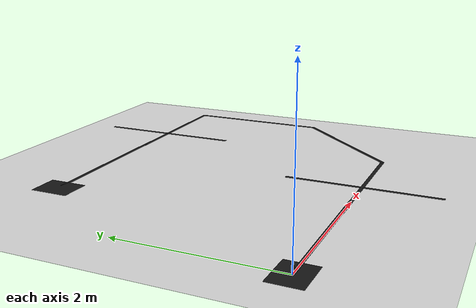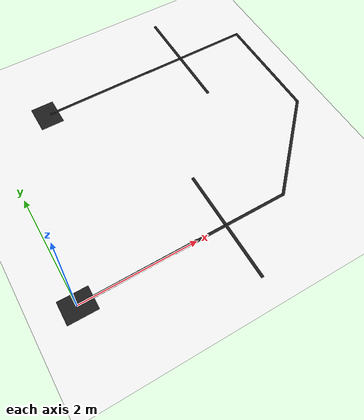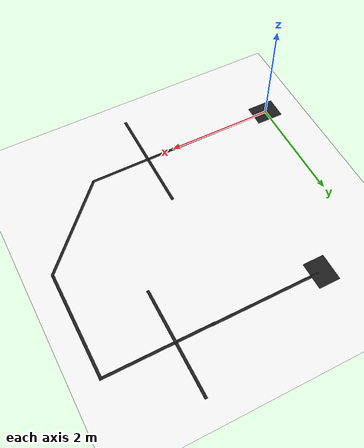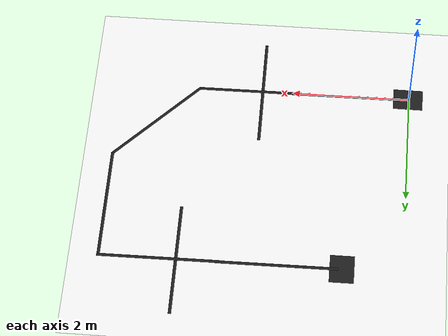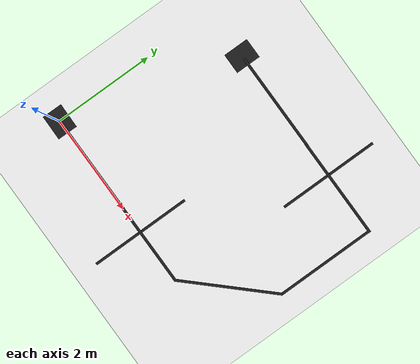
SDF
<sdf version="1.7">
 <world name="default">
  <light name="sun" type="directional">
   <pose>0 0 10 0 -0 0</pose>
   <diffuse>0.8 0.8 0.8 1</diffuse>
   <specular>0.2 0.2 0.2 1</specular>
   <attenuation>
    <range>1000</range>
    <constant>0.9</constant>
    <linear>0.01</linear>
    <quadratic>0.001</quadratic>
   </attenuation>
   <direction>-0.5 0.1 -0.9</direction>
   <spot><inner_angle>0</inner_angle><outer_angle>0</outer_angle><falloff>0</falloff></spot>
  </light>
  <model name="ground_plane">
   <static>1</static>
   <link name="link">
    <collision name="collision">
     <geometry><plane><normal>0 0 1</normal><size>100 100</size></plane></geometry>
     <surface>
      <contact><collide_bitmask>65535</collide_bitmask></contact>
      <friction><ode><mu>100</mu><mu2>50</mu2></ode></friction>
     </surface>
    </collision>
    <visual name="visual">
     <cast_shadows>0</cast_shadows>
     <geometry><plane><normal>0 0 1</normal><size>100 100</size></plane></geometry>
     <material><ambient>1 1 1 1</ambient><diffuse>1 1 1 1</diffuse><name>MyMaterials/White</name></material>
    </visual>
   </link>
  </model>
  <gravity>0 0 -9.8</gravity>
  <magnetic_field>6e-06 2.3e-05 -4.2e-05</magnetic_field>
  <atmosphere type="adiabatic"/>
  <physics type="ode">
   <max_step_size>0.001</max_step_size>
   <real_time_factor>1</real_time_factor>
   <real_time_update_rate>1000</real_time_update_rate>
  </physics>
  <scene><ambient>0.4 0.4 0.4 1</ambient><background>0.7 0.7 0.7 1</background><shadows>1</shadows></scene>
  <spherical_coordinates>
   <surface_model>EARTH_WGS84</surface_model>
   <latitude_deg>0</latitude_deg>
   <longitude_deg>0</longitude_deg>
   <elevation>0</elevation>
   <heading_deg>0</heading_deg>
  </spherical_coordinates>
  <model name="black_box">
   <static>1</static>
   <link name="link">
    <visual name="visual">
     <geometry><box><size>0.4 0.5 0.001</size></box></geometry>
     <material>
      <script><uri>file://media/materials/scripts/gazebo.material</uri><name>Gazebo/Black</name></script>
     </material>
    </visual>
   </link>
   <pose>0.014225 -0.002915 0 0 0 -1.58</pose>
  </model>
  <model name="black_line">
   <static>1</static>
   <link name="link">
    <visual name="visual">
     <geometry><box><size>0.05 2 0.001</size></box></geometry>
     <material>
      <script><uri>file://media/materials/scripts/gazebo.material</uri><name>Gazebo/Black</name></script>
     </material>
    </visual>
   </link>
   <pose>1.01052 0.006113 0 0 0 -1.56806</pose>
  </model>
  <model name="black_line_clone">
   <static>1</static>
   <link name="link">
    <visual name="visual">
     <geometry><box><size>0.05 2 0.001</size></box></geometry>
     <material>
      <script><uri>file://media/materials/scripts/gazebo.material</uri><name>Gazebo/Black</name></script>
     </material>
    </visual>
   </link>
   <pose>2.61804 0.006425 0 0 0 -1.56806</pose>
  </model>
  <model name="black_line_clone_0">
   <static>1</static>
   <link name="link">
    <visual name="visual">
     <geometry><box><size>0.05 2 0.001</size></box></geometry>
     <material>
      <script><uri>file://media/materials/scripts/gazebo.material</uri><name>Gazebo/Black</name></script>
     </material>
    </visual>
   </link>
   <pose>4.28365 0.728841 0 0 0 -0.75518</pose>
  </model>
  <model name="black_line_0">
   <static>1</static>
   <link name="link">
    <visual name="visual">
     <geometry><box><size>0.05 2 0.001</size></box></geometry>
     <material>
      <script><uri>file://media/materials/scripts/gazebo.material</uri><name>Gazebo/Black</name></script>
     </material>
    </visual>
   </link>
   <pose>4.9606 2.44386 0 0 -0 0</pose>
  </model>
  <model name="black_line_clone_clone">
   <static>1</static>
   <link name="link">
    <visual name="visual">
     <geometry><box><size>0.05 2 0.001</size></box></geometry>
     <material>
      <script><uri>file://media/materials/scripts/gazebo.material</uri><name>Gazebo/Black</name></script>
     </material>
    </visual>
   </link>
   <pose>3.9874 3.41587 0 0 0 -1.56806</pose>
  </model>
  <model name="black_line_clone_clone_0">
   <static>1</static>
   <link name="link">
    <visual name="visual">
     <geometry><box><size>0.05 2 0.001</size></box></geometry>
     <material>
      <script><uri>file://media/materials/scripts/gazebo.material</uri><name>Gazebo/Black</name></script>
     </material>
    </visual>
   </link>
   <pose>2.05265 3.41532 0 0 0 -1.56806</pose>
  </model>
  <model name="black_line_0_clone">
   <static>1</static>
   <link name="link">
    <visual name="visual">
     <geometry><box><size>0.05 2 0.001</size></box></geometry>
     <material>
      <script><uri>file://media/materials/scripts/gazebo.material</uri><name>Gazebo/Black</name></script>
     </material>
    </visual>
   </link>
   <pose>2.51993 0.011549 0 0 -0 0</pose>
  </model>
  <model name="black_line_0_clone_0">
   <static>1</static>
   <link name="link">
    <visual name="visual">
     <geometry><box><size>0.05 2 0.001</size></box></geometry>
     <material>
      <script><uri>file://media/materials/scripts/gazebo.material</uri><name>Gazebo/Black</name></script>
     </material>
    </visual>
   </link>
   <pose>3.69228 3.41605 0 0 -0 0</pose>
  </model>
  <model name="black_box_0">
   <static>1</static>
   <link name="link">
    <visual name="visual">
     <geometry><box><size>0.4 0.5 0.001</size></box></geometry>
     <material>
      <script><uri>file://media/materials/scripts/gazebo.material</uri><name>Gazebo/Black</name></script>
     </material>
    </visual>
   </link>
   <pose>0.993656 3.41127 0 0 -0 0</pose>
  </model>
 </world>
</sdf>
